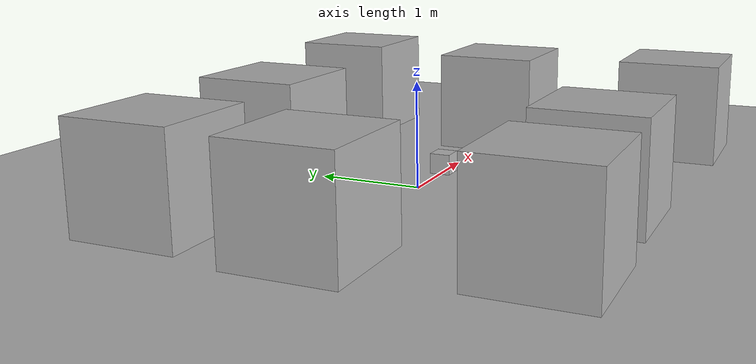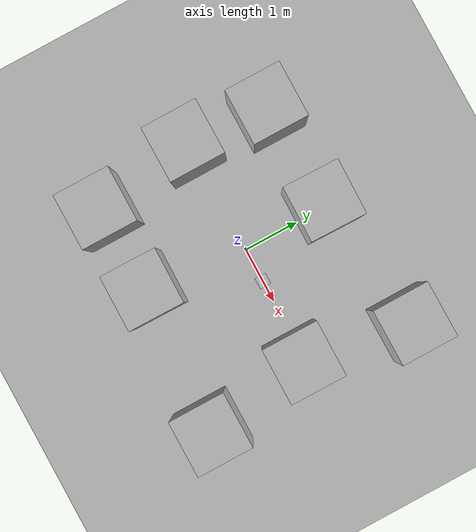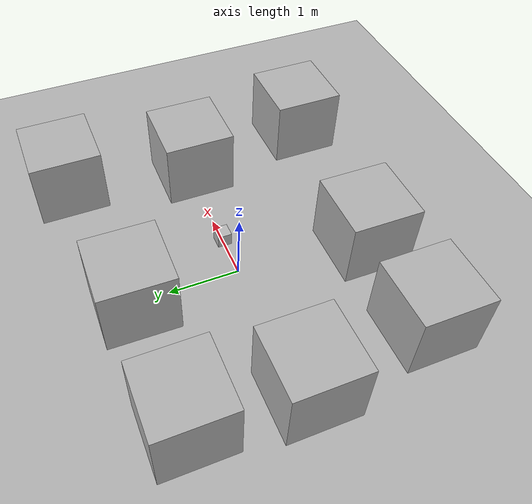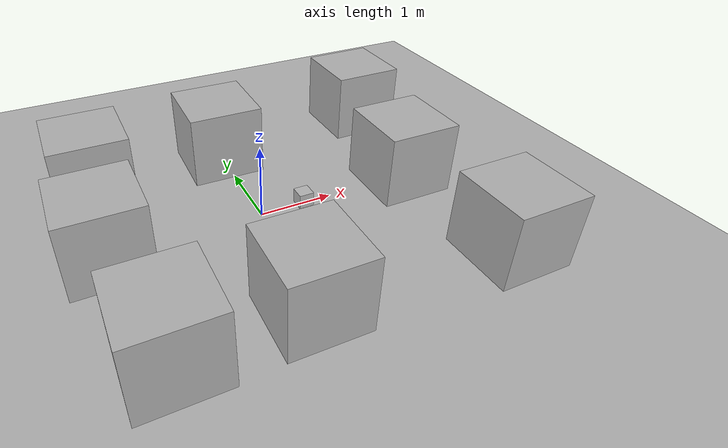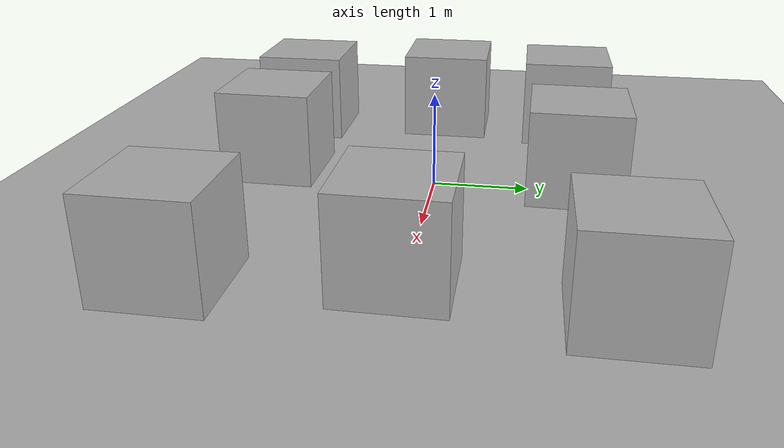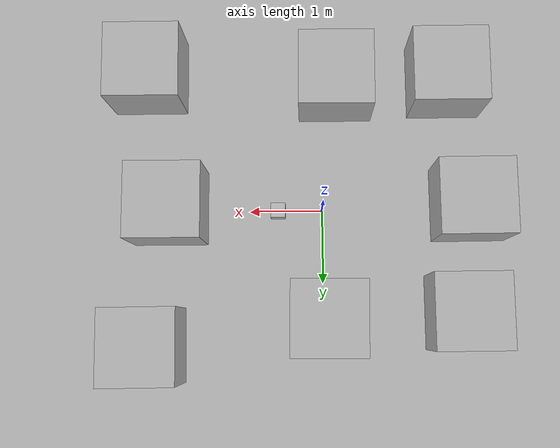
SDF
<sdf version='1.10'>
  <world name='mi_mundo'>
    <gravity>0 0 -9.8000000000000007</gravity>
    <magnetic_field>5.5644999999999998e-06 2.2875799999999999e-05 -4.2388400000000002e-05</magnetic_field>
    <atmosphere type='adiabatic'/>
    <physics type='ode'>
      <max_step_size>0.001</max_step_size>
      <real_time_factor>1</real_time_factor>
      <real_time_update_rate>1000</real_time_update_rate>
    </physics>
    <scene>
      <ambient>0.400000006 0.400000006 0.400000006 1</ambient>
      <background>0.699999988 0.699999988 0.699999988 1</background>
      <shadows>true</shadows>
    </scene>
    <model name='ground_plane'>
      <static>true</static>
      <link name='link'>
        <collision name='collision'>
          <geometry>
            <plane>
              <normal>0 0 1</normal>
              <size>100 100</size>
            </plane>
          </geometry>
          <surface>
            <friction>
              <ode/>
            </friction>
            <bounce/>
            <contact/>
          </surface>
        </collision>
        <visual name='visual'>
          <geometry>
            <plane>
              <normal>0 0 1</normal>
              <size>100 100</size>
            </plane>
          </geometry>
          <material>
            <ambient>0.699999988 0.699999988 0.699999988 1</ambient>
            <diffuse>0.699999988 0.699999988 0.699999988 1</diffuse>
          </material>
        </visual>
        <pose>0 0 0 0 0 0</pose>
        <inertial>
          <pose>0 0 0 0 0 0</pose>
          <mass>1</mass>
          <inertia>
            <ixx>1</ixx>
            <ixy>0</ixy>
            <ixz>0</ixz>
            <iyy>1</iyy>
            <iyz>0</iyz>
            <izz>1</izz>
          </inertia>
        </inertial>
        <enable_wind>false</enable_wind>
      </link>
      <pose>0 0 0 0 0 0</pose>
      <self_collide>false</self_collide>
    </model>
    <model name='cube_1'>
      <pose>0.60687200677422082 1.0810991544285039e-07 0.099999997472225183 -2.085664789671334e-11 8.8711590380115795e-09 -1.005471614619596e-06</pose>
      <static>false</static>
      <link name='link'>
        <inertial>
          <mass>1</mass>
          <pose>0 0 0 0 0 0</pose>
          <inertia>
            <ixx>1</ixx>
            <ixy>0</ixy>
            <ixz>0</ixz>
            <iyy>1</iyy>
            <iyz>0</iyz>
            <izz>1</izz>
          </inertia>
        </inertial>
        <collision name='collision'>
          <geometry>
            <box>
              <size>0.20000000000000001 0.20000000000000001 0.20000000000000001</size>
            </box>
          </geometry>
          <surface>
            <friction>
              <ode/>
            </friction>
            <bounce/>
            <contact/>
          </surface>
        </collision>
        <visual name='visual'>
          <geometry>
            <box>
              <size>0.20000000000000001 0.20000000000000001 0.20000000000000001</size>
            </box>
          </geometry>
        </visual>
        <pose>0 0 0 0 0 0</pose>
        <enable_wind>false</enable_wind>
      </link>
      <self_collide>false</self_collide>
    </model>
    <model name='box'>
      <pose>-1.9988672658182287 -0.057313167146071556 0.49999998991354605 5.3759610671225246e-12 -2.2044579694663807e-09 0.0029727359780527163</pose>
      <link name='box_link'>
        <inertial>
          <inertia>
            <ixx>0.16666</ixx>
            <ixy>0</ixy>
            <ixz>0</ixz>
            <iyy>0.16666</iyy>
            <iyz>0</iyz>
            <izz>0.16666</izz>
          </inertia>
          <mass>1</mass>
          <pose>0 0 0 0 0 0</pose>
        </inertial>
        <collision name='box_collision'>
          <geometry>
            <box>
              <size>1 1 1</size>
            </box>
          </geometry>
          <surface>
            <friction>
              <ode/>
            </friction>
            <bounce/>
            <contact/>
          </surface>
        </collision>
        <visual name='box_visual'>
          <geometry>
            <box>
              <size>1 1 1</size>
            </box>
          </geometry>
          <material>
            <ambient>0.300000012 0.300000012 0.300000012 1</ambient>
            <diffuse>0.699999988 0.699999988 0.699999988 1</diffuse>
            <specular>1 1 1 1</specular>
          </material>
        </visual>
        <pose>0 0 0 0 0 0</pose>
        <enable_wind>false</enable_wind>
      </link>
      <static>false</static>
      <self_collide>false</self_collide>
    </model>
    <model name='box_0'>
      <pose>-0.19811651114486789 -1.783371912454226 0.49999914474170953 1.3617639798077423e-07 8.949328678487964e-08 -0.0082599669883274187</pose>
      <link name='box_link'>
        <inertial>
          <inertia>
            <ixx>0.16666</ixx>
            <ixy>0</ixy>
            <ixz>0</ixz>
            <iyy>0.16666</iyy>
            <iyz>0</iyz>
            <izz>0.16666</izz>
          </inertia>
          <mass>1</mass>
          <pose>0 0 0 0 0 0</pose>
        </inertial>
        <collision name='box_collision'>
          <geometry>
            <box>
              <size>1 1 1</size>
            </box>
          </geometry>
          <surface>
            <friction>
              <ode/>
            </friction>
            <bounce/>
            <contact/>
          </surface>
        </collision>
        <visual name='box_visual'>
          <geometry>
            <box>
              <size>1 1 1</size>
            </box>
          </geometry>
          <material>
            <ambient>0.300000012 0.300000012 0.300000012 1</ambient>
            <diffuse>0.699999988 0.699999988 0.699999988 1</diffuse>
            <specular>1 1 1 1</specular>
          </material>
        </visual>
        <pose>0 0 0 0 0 0</pose>
        <enable_wind>false</enable_wind>
      </link>
      <static>false</static>
      <self_collide>false</self_collide>
    </model>
    <model name='box_1'>
      <pose>-0.058607180785713607 1.486252037355978 0.49999999005450241 1.4460301844526555e-09 7.1587277357152607e-11 -0.015192098679326332</pose>
      <link name='box_link'>
        <inertial>
          <inertia>
            <ixx>0.16666</ixx>
            <ixy>0</ixy>
            <ixz>0</ixz>
            <iyy>0.16666</iyy>
            <iyz>0</iyz>
            <izz>0.16666</izz>
          </inertia>
          <mass>1</mass>
          <pose>0 0 0 0 0 0</pose>
        </inertial>
        <collision name='box_collision'>
          <geometry>
            <box>
              <size>1 1 1</size>
            </box>
          </geometry>
          <surface>
            <friction>
              <ode/>
            </friction>
            <bounce/>
            <contact/>
          </surface>
        </collision>
        <visual name='box_visual'>
          <geometry>
            <box>
              <size>1 1 1</size>
            </box>
          </geometry>
          <material>
            <ambient>0.300000012 0.300000012 0.300000012 1</ambient>
            <diffuse>0.699999988 0.699999988 0.699999988 1</diffuse>
            <specular>1 1 1 1</specular>
          </material>
        </visual>
        <pose>0 0 0 0 0 0</pose>
        <enable_wind>false</enable_wind>
      </link>
      <static>false</static>
      <self_collide>false</self_collide>
    </model>
    <model name='box_2'>
      <pose>2.0773705188834208 -0.052782144002833799 0.49999998498977294 4.6058183349572491e-09 4.8211968803569036e-09 -0.0040083604875250124</pose>
      <link name='box_link'>
        <inertial>
          <inertia>
            <ixx>0.16666</ixx>
            <ixy>0</ixy>
            <ixz>0</ixz>
            <iyy>0.16666</iyy>
            <iyz>0</iyz>
            <izz>0.16666</izz>
          </inertia>
          <mass>1</mass>
          <pose>0 0 0 0 0 0</pose>
        </inertial>
        <collision name='box_collision'>
          <geometry>
            <box>
              <size>1 1 1</size>
            </box>
          </geometry>
          <surface>
            <friction>
              <ode/>
            </friction>
            <bounce/>
            <contact/>
          </surface>
        </collision>
        <visual name='box_visual'>
          <geometry>
            <box>
              <size>1 1 1</size>
            </box>
          </geometry>
          <material>
            <ambient>0.300000012 0.300000012 0.300000012 1</ambient>
            <diffuse>0.699999988 0.699999988 0.699999988 1</diffuse>
            <specular>1 1 1 1</specular>
          </material>
        </visual>
        <pose>0 0 0 0 0 0</pose>
        <enable_wind>false</enable_wind>
      </link>
      <static>false</static>
      <self_collide>false</self_collide>
    </model>
    <model name='box_3'>
      <pose>2.3746475455573215 -1.9184085820665191 0.49999999990199806 1.7084716059672498e-21 1.7859134985792927e-21 -2.0193124312478175e-22</pose>
      <link name='box_link'>
        <inertial>
          <inertia>
            <ixx>0.16666</ixx>
            <ixy>0</ixy>
            <ixz>0</ixz>
            <iyy>0.16666</iyy>
            <iyz>0</iyz>
            <izz>0.16666</izz>
          </inertia>
          <mass>1</mass>
          <pose>0 0 0 0 0 0</pose>
        </inertial>
        <collision name='box_collision'>
          <geometry>
            <box>
              <size>1 1 1</size>
            </box>
          </geometry>
          <surface>
            <friction>
              <ode/>
            </friction>
            <bounce/>
            <contact/>
          </surface>
        </collision>
        <visual name='box_visual'>
          <geometry>
            <box>
              <size>1 1 1</size>
            </box>
          </geometry>
          <material>
            <ambient>0.300000012 0.300000012 0.300000012 1</ambient>
            <diffuse>0.699999988 0.699999988 0.699999988 1</diffuse>
            <specular>1 1 1 1</specular>
          </material>
        </visual>
        <pose>0 0 0 0 0 0</pose>
        <enable_wind>false</enable_wind>
      </link>
      <static>false</static>
      <self_collide>false</self_collide>
    </model>
    <model name='box_4'>
      <pose>2.3763025561029263 1.8157047813472778 0.4999999531326334 -3.3099566939114912e-07 -3.2499371297676421e-07 0.0037325734758172926</pose>
      <link name='box_link'>
        <inertial>
          <inertia>
            <ixx>0.16666</ixx>
            <ixy>0</ixy>
            <ixz>0</ixz>
            <iyy>0.16666</iyy>
            <iyz>0</iyz>
            <izz>0.16666</izz>
          </inertia>
          <mass>1</mass>
          <pose>0 0 0 0 0 0</pose>
        </inertial>
        <collision name='box_collision'>
          <geometry>
            <box>
              <size>1 1 1</size>
            </box>
          </geometry>
          <surface>
            <friction>
              <ode/>
            </friction>
            <bounce/>
            <contact/>
          </surface>
        </collision>
        <visual name='box_visual'>
          <geometry>
            <box>
              <size>1 1 1</size>
            </box>
          </geometry>
          <material>
            <ambient>0.300000012 0.300000012 0.300000012 1</ambient>
            <diffuse>0.699999988 0.699999988 0.699999988 1</diffuse>
            <specular>1 1 1 1</specular>
          </material>
        </visual>
        <pose>0 0 0 0 0 0</pose>
        <enable_wind>false</enable_wind>
      </link>
      <static>false</static>
      <self_collide>false</self_collide>
    </model>
    <model name='box_5'>
      <pose>-1.8867807183041414 1.4169740900179948 0.49999999990199806 6.2287739151293738e-22 9.3279666454713669e-22 -3.6315533669320137e-22</pose>
      <link name='box_link'>
        <inertial>
          <inertia>
            <ixx>0.16666</ixx>
            <ixy>0</ixy>
            <ixz>0</ixz>
            <iyy>0.16666</iyy>
            <iyz>0</iyz>
            <izz>0.16666</izz>
          </inertia>
          <mass>1</mass>
          <pose>0 0 0 0 0 0</pose>
        </inertial>
        <collision name='box_collision'>
          <geometry>
            <box>
              <size>1 1 1</size>
            </box>
          </geometry>
          <surface>
            <friction>
              <ode/>
            </friction>
            <bounce/>
            <contact/>
          </surface>
        </collision>
        <visual name='box_visual'>
          <geometry>
            <box>
              <size>1 1 1</size>
            </box>
          </geometry>
          <material>
            <ambient>0.300000012 0.300000012 0.300000012 1</ambient>
            <diffuse>0.699999988 0.699999988 0.699999988 1</diffuse>
            <specular>1 1 1 1</specular>
          </material>
        </visual>
        <pose>0 0 0 0 0 0</pose>
        <enable_wind>false</enable_wind>
      </link>
      <static>false</static>
      <self_collide>false</self_collide>
    </model>
    <model name='box_6'>
      <pose>-1.7136889912620035 -1.8168120674709893 0.49999999990199806 6.2287739151293738e-22 9.3279666454713669e-22 -3.6315533669320137e-22</pose>
      <link name='box_link'>
        <inertial>
          <inertia>
            <ixx>0.16666</ixx>
            <ixy>0</ixy>
            <ixz>0</ixz>
            <iyy>0.16666</iyy>
            <iyz>0</iyz>
            <izz>0.16666</izz>
          </inertia>
          <mass>1</mass>
          <pose>0 0 0 0 0 0</pose>
        </inertial>
        <collision name='box_collision'>
          <geometry>
            <box>
              <size>1 1 1</size>
            </box>
          </geometry>
          <surface>
            <friction>
              <ode/>
            </friction>
            <bounce/>
            <contact/>
          </surface>
        </collision>
        <visual name='box_visual'>
          <geometry>
            <box>
              <size>1 1 1</size>
            </box>
          </geometry>
          <material>
            <ambient>0.300000012 0.300000012 0.300000012 1</ambient>
            <diffuse>0.699999988 0.699999988 0.699999988 1</diffuse>
            <specular>1 1 1 1</specular>
          </material>
        </visual>
        <pose>0 0 0 0 0 0</pose>
        <enable_wind>false</enable_wind>
      </link>
      <static>false</static>
      <self_collide>false</self_collide>
    </model>
    <light name='sun' type='directional'>
      <pose>0 0 10 0 -0.50000000000000011 0</pose>
      <cast_shadows>false</cast_shadows>
      <intensity>1</intensity>
      <direction>-0.5 0.10000000000000001 -1</direction>
      <diffuse>1 1 1 1</diffuse>
      <specular>0.5 0.5 0.5 1</specular>
      <attenuation>
        <range>1000</range>
        <linear>0.01</linear>
        <constant>0.90000000000000002</constant>
        <quadratic>0.001</quadratic>
      </attenuation>
      <spot>
        <inner_angle>0</inner_angle>
        <outer_angle>0</outer_angle>
        <falloff>0</falloff>
      </spot>
    </light>
  </world>
</sdf>
